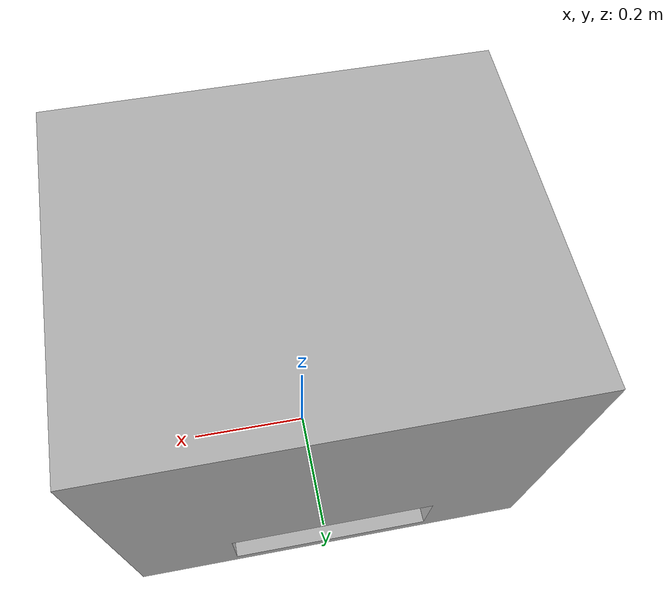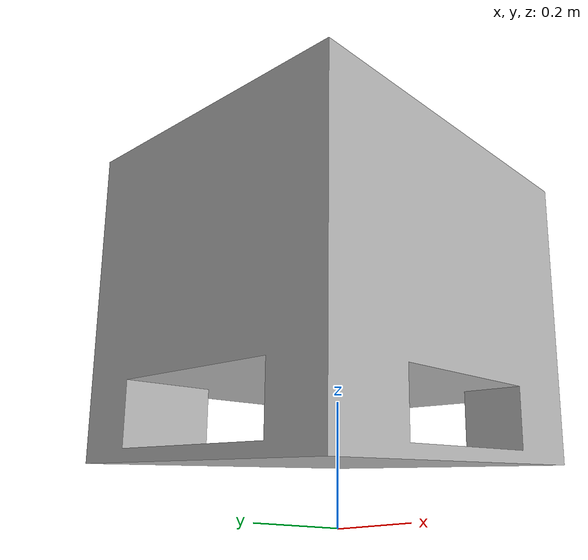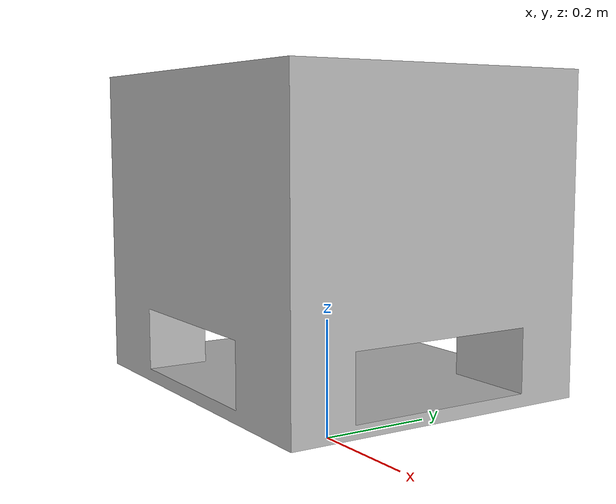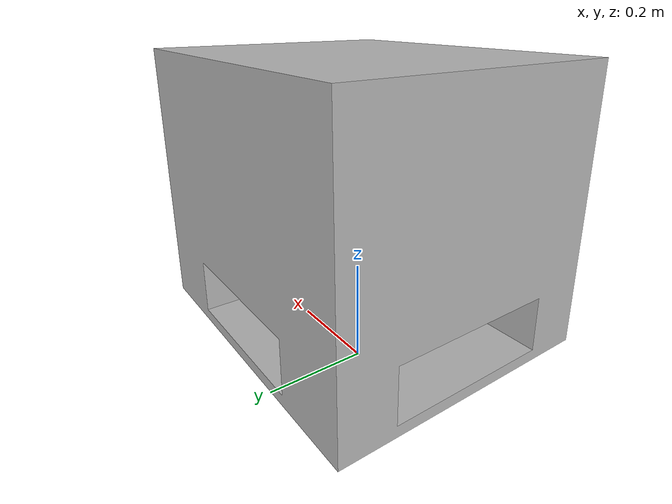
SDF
<?xml version="1.0" ?>
<sdf version="1.5">
  <model name="kutu">
     <static>true</static>
     <pose>0 0 0.215 0 0 0</pose>
     <link name="link">
      <collision name="collision">
        <geometry>
          <mesh>
            <uri>model://kutu/meshes/kutu3.dae</uri>
          </mesh>
        </geometry>
      </collision>
      <visual name="visual">
        <geometry>
          <mesh>
            <uri>model://kutu/meshes/kutu3.dae</uri>
          </mesh>
        </geometry>
        <material>
          <script>
            <uri>model://kutu/materials/scripts</uri>
            <uri>model://kutu/materials/textures</uri>
            <name>Kutu/Ahsap</name>
          </script>
        </material>
      </visual>
    </link>
  </model>
</sdf>
